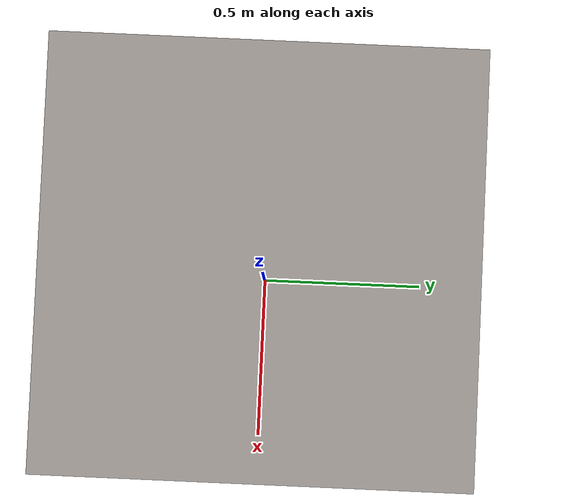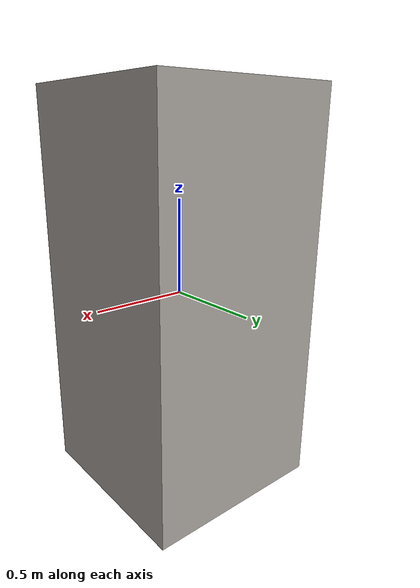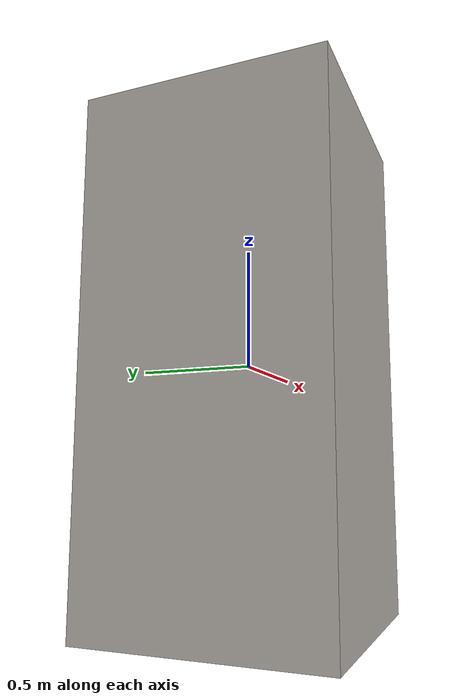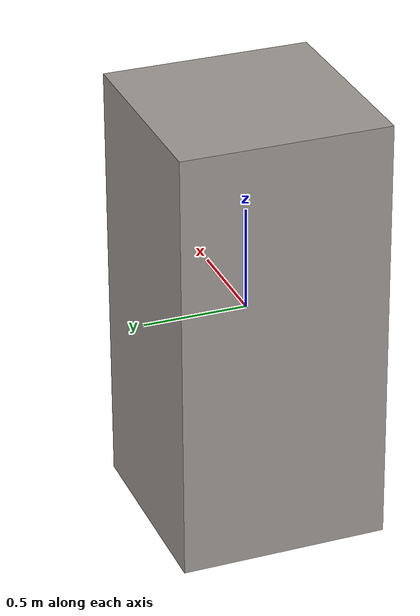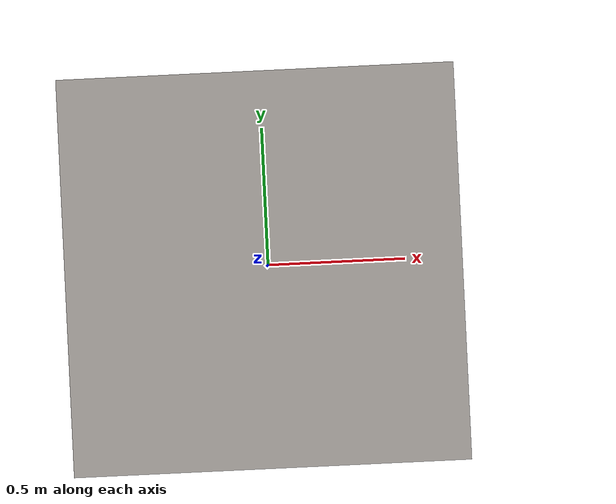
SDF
<?xml version="1.0"?>
<sdf version="1.6">
  <model name="Shower">
    <static>true</static>
    <link name="link">
      <collision name="col">
        <geometry>
          <box>
            <size>1.0 1.0 2.1</size>
          </box>
        </geometry>
      </collision>
      <visual name="vis">
        <geometry>
          <box>
            <size>1.0 1.0 2.1</size>
          </box>
        </geometry>
        <material>
          <ambient>0.62 0.6 0.58 1</ambient>
          <diffuse>0.62 0.6 0.58 1</diffuse>
        </material>
      </visual>
    </link>
  </model>
</sdf>
